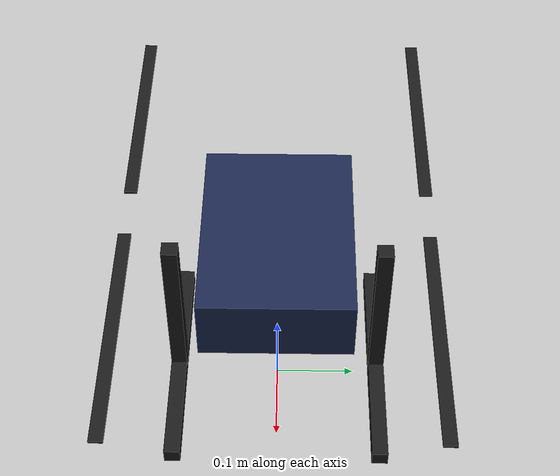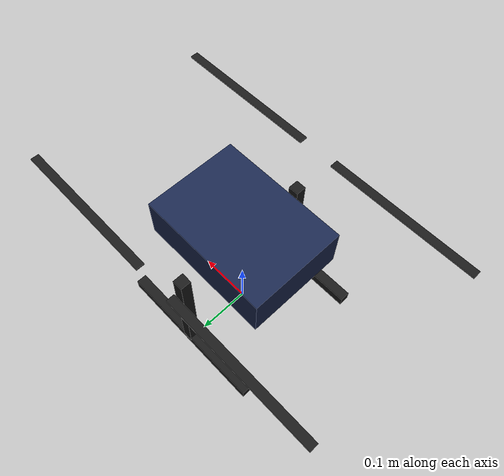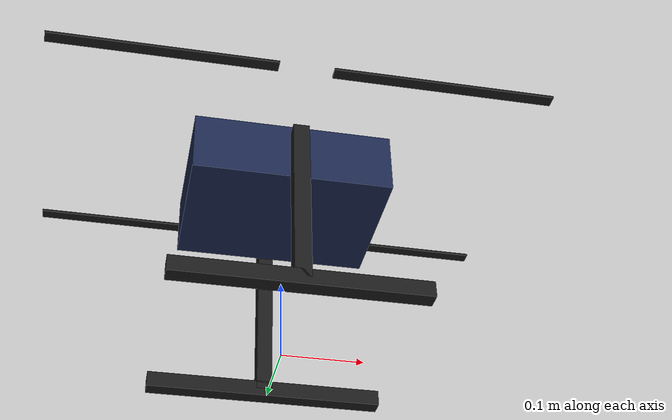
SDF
<?xml version='1.0' encoding='utf-8'?>
<sdf version="1.8">
  <model name="addc_quad">
    <pose>0 0 0.24 0 0 0</pose>
    <self_collide>false</self_collide>
    <link name="base_link">
      <inertial>
        <mass>1.7</mass>
        <inertia>
          <ixx>0.0217</ixx>
          <iyy>0.0217</iyy>
          <izz>0.04</izz>
          <ixy>0</ixy>
          <ixz>0</ixz>
          <iyz>0</iyz>
        </inertia>
      </inertial>
      <visual name="body">
        <pose>0 0 0 0 0 0</pose>
        <geometry>
          <box>
            <size>0.25 0.18 0.08</size>
          </box>
        </geometry>
        <material>
          <ambient>0.1 0.15 0.3 1</ambient>
          <diffuse>0.1 0.15 0.3 1</diffuse>
        </material>
      </visual>
      <collision name="body_collision">
        <pose>0 0 0 0 0 0</pose>
        <geometry>
          <box>
            <size>0.25 0.18 0.08</size>
          </box>
        </geometry>
      </collision>
      <visual name="leg_0">
        <pose>0 -0.13 -0.22 0 0 0</pose>
        <geometry>
          <box>
            <size>0.3 0.02 0.02</size>
          </box>
        </geometry>
        <material>
          <ambient>0.1 0.1 0.1 1</ambient>
          <diffuse>0.1 0.1 0.1 1</diffuse>
        </material>
      </visual>
      <collision name="leg_0_collision">
        <pose>0 -0.13 -0.22 0 0 0</pose>
        <geometry>
          <box>
            <size>0.3 0.02 0.02</size>
          </box>
        </geometry>
      </collision>
      <visual name="strut_0">
        <pose>0 -0.13 -0.11 0 0 0</pose>
        <geometry>
          <box>
            <size>0.02 0.02 0.22</size>
          </box>
        </geometry>
        <material>
          <ambient>0.1 0.1 0.1 1</ambient>
          <diffuse>0.1 0.1 0.1 1</diffuse>
        </material>
      </visual>
      <collision name="strut_0_collision">
        <pose>0 -0.13 -0.11 0 0 0</pose>
        <geometry>
          <box>
            <size>0.02 0.02 0.22</size>
          </box>
        </geometry>
      </collision>
      <visual name="leg_1">
        <pose>0 0.13 -0.22 0 0 0</pose>
        <geometry>
          <box>
            <size>0.3 0.02 0.02</size>
          </box>
        </geometry>
        <material>
          <ambient>0.1 0.1 0.1 1</ambient>
          <diffuse>0.1 0.1 0.1 1</diffuse>
        </material>
      </visual>
      <collision name="leg_1_collision">
        <pose>0 0.13 -0.22 0 0 0</pose>
        <geometry>
          <box>
            <size>0.3 0.02 0.02</size>
          </box>
        </geometry>
      </collision>
      <visual name="strut_1">
        <pose>0 0.13 -0.11 0 0 0</pose>
        <geometry>
          <box>
            <size>0.02 0.02 0.22</size>
          </box>
        </geometry>
        <material>
          <ambient>0.1 0.1 0.1 1</ambient>
          <diffuse>0.1 0.1 0.1 1</diffuse>
        </material>
      </visual>
      <collision name="strut_1_collision">
        <pose>0 0.13 -0.11 0 0 0</pose>
        <geometry>
          <box>
            <size>0.02 0.02 0.22</size>
          </box>
        </geometry>
      </collision>
      <sensor name="imu_sensor" type="imu">
        <always_on>true</always_on>
        <update_rate>250</update_rate>
      </sensor>
      <sensor name="air_pressure_sensor" type="air_pressure">
        <always_on>true</always_on>
        <update_rate>50</update_rate>
        <air_pressure>
          <pressure>
            <noise type="gaussian">
              <mean>0</mean>
              <stddev>0.01</stddev>
            </noise>
          </pressure>
        </air_pressure>
      </sensor>
      <sensor name="discovery_camera" type="camera">
        <pose>0.2 0.0 -0.05 0 0.4363323129985824 0</pose>
        <always_on>true</always_on>
        <update_rate>15.0</update_rate>
        <topic>/camera/discovery/image</topic>
        <camera name="discovery">
          <horizontal_fov>1.0471975511965976</horizontal_fov>
          <optical_frame_id>discovery_camera_optical</optical_frame_id>
          <camera_info_topic>/camera/discovery/camera_info</camera_info_topic>
          <image>
            <width>1920</width>
            <height>1080</height>
            <format>R8G8B8</format>
          </image>
          <clip>
            <near>0.05</near>
            <far>100</far>
          </clip>
        </camera>
      </sensor>
      <sensor name="down_camera" type="camera">
        <pose>0.0 0.0 -0.1 0 1.5707963267948966 0</pose>
        <always_on>true</always_on>
        <update_rate>15.0</update_rate>
        <topic>/camera/down/image</topic>
        <camera name="down">
          <horizontal_fov>1.0471975511965976</horizontal_fov>
          <optical_frame_id>down_camera_optical</optical_frame_id>
          <camera_info_topic>/camera/down/camera_info</camera_info_topic>
          <image>
            <width>1920</width>
            <height>1080</height>
            <format>R8G8B8</format>
          </image>
          <clip>
            <near>0.05</near>
            <far>100</far>
          </clip>
        </camera>
      </sensor>
    </link>
    <link name="rotor_0">
      <pose>0.174 -0.174 0.06 0 0 0</pose>
      <inertial>
        <mass>0.016</mass>
        <inertia>
          <ixx>3.85e-07</ixx>
          <iyy>2.61e-05</iyy>
          <izz>2.64e-05</izz>
        </inertia>
      </inertial>
      <visual name="propeller">
        <pose>0 0 0 0 0 0</pose>
        <geometry>
          <box>
            <size>0.28 0.015 0.003</size>
          </box>
        </geometry>
        <material>
          <ambient>0.1 0.1 0.1 1</ambient>
          <diffuse>0.1 0.1 0.1 1</diffuse>
        </material>
      </visual>
    </link>
    <joint name="rotor_0_joint" type="revolute">
      <parent>base_link</parent>
      <child>rotor_0</child>
      <axis>
        <xyz>0 0 1</xyz>
        <limit>
          <lower>-1e16</lower>
          <upper>1e16</upper>
        </limit>
      </axis>
    </joint>
    <plugin filename="ignition-gazebo-multicopter-motor-model-system" name="ignition::gazebo::systems::MulticopterMotorModel">
      <robotNamespace>addc_quad_0</robotNamespace>
      <jointName>rotor_0_joint</jointName>
      <linkName>rotor_0</linkName>
      <turningDirection>ccw</turningDirection>
      <timeConstantUp>0.0125</timeConstantUp>
      <timeConstantDown>0.025</timeConstantDown>
      <maxRotVelocity>1000</maxRotVelocity>
      <motorConstant>8.54858e-06</motorConstant>
      <momentConstant>0.016</momentConstant>
      <commandSubTopic>command/motor_speed</commandSubTopic>
      <motorNumber>0</motorNumber>
      <rotorDragCoefficient>8.06428e-05</rotorDragCoefficient>
      <rollingMomentCoefficient>1e-06</rollingMomentCoefficient>
      <rotorVelocitySlowdownSim>10</rotorVelocitySlowdownSim>
      <motorType>velocity</motorType>
    </plugin>
    <link name="rotor_1">
      <pose>-0.174 0.174 0.06 0 0 0</pose>
      <inertial>
        <mass>0.016</mass>
        <inertia>
          <ixx>3.85e-07</ixx>
          <iyy>2.61e-05</iyy>
          <izz>2.64e-05</izz>
        </inertia>
      </inertial>
      <visual name="propeller">
        <pose>0 0 0 0 0 0</pose>
        <geometry>
          <box>
            <size>0.28 0.015 0.003</size>
          </box>
        </geometry>
        <material>
          <ambient>0.1 0.1 0.1 1</ambient>
          <diffuse>0.1 0.1 0.1 1</diffuse>
        </material>
      </visual>
    </link>
    <joint name="rotor_1_joint" type="revolute">
      <parent>base_link</parent>
      <child>rotor_1</child>
      <axis>
        <xyz>0 0 1</xyz>
        <limit>
          <lower>-1e16</lower>
          <upper>1e16</upper>
        </limit>
      </axis>
    </joint>
    <plugin filename="ignition-gazebo-multicopter-motor-model-system" name="ignition::gazebo::systems::MulticopterMotorModel">
      <robotNamespace>addc_quad_0</robotNamespace>
      <jointName>rotor_1_joint</jointName>
      <linkName>rotor_1</linkName>
      <turningDirection>ccw</turningDirection>
      <timeConstantUp>0.0125</timeConstantUp>
      <timeConstantDown>0.025</timeConstantDown>
      <maxRotVelocity>1000</maxRotVelocity>
      <motorConstant>8.54858e-06</motorConstant>
      <momentConstant>0.016</momentConstant>
      <commandSubTopic>command/motor_speed</commandSubTopic>
      <motorNumber>1</motorNumber>
      <rotorDragCoefficient>8.06428e-05</rotorDragCoefficient>
      <rollingMomentCoefficient>1e-06</rollingMomentCoefficient>
      <rotorVelocitySlowdownSim>10</rotorVelocitySlowdownSim>
      <motorType>velocity</motorType>
    </plugin>
    <link name="rotor_2">
      <pose>0.174 0.174 0.06 0 0 0</pose>
      <inertial>
        <mass>0.016</mass>
        <inertia>
          <ixx>3.85e-07</ixx>
          <iyy>2.61e-05</iyy>
          <izz>2.64e-05</izz>
        </inertia>
      </inertial>
      <visual name="propeller">
        <pose>0 0 0 0 0 0</pose>
        <geometry>
          <box>
            <size>0.28 0.015 0.003</size>
          </box>
        </geometry>
        <material>
          <ambient>0.1 0.1 0.1 1</ambient>
          <diffuse>0.1 0.1 0.1 1</diffuse>
        </material>
      </visual>
    </link>
    <joint name="rotor_2_joint" type="revolute">
      <parent>base_link</parent>
      <child>rotor_2</child>
      <axis>
        <xyz>0 0 1</xyz>
        <limit>
          <lower>-1e16</lower>
          <upper>1e16</upper>
        </limit>
      </axis>
    </joint>
    <plugin filename="ignition-gazebo-multicopter-motor-model-system" name="ignition::gazebo::systems::MulticopterMotorModel">
      <robotNamespace>addc_quad_0</robotNamespace>
      <jointName>rotor_2_joint</jointName>
      <linkName>rotor_2</linkName>
      <turningDirection>cw</turningDirection>
      <timeConstantUp>0.0125</timeConstantUp>
      <timeConstantDown>0.025</timeConstantDown>
      <maxRotVelocity>1000</maxRotVelocity>
      <motorConstant>8.54858e-06</motorConstant>
      <momentConstant>0.016</momentConstant>
      <commandSubTopic>command/motor_speed</commandSubTopic>
      <motorNumber>2</motorNumber>
      <rotorDragCoefficient>8.06428e-05</rotorDragCoefficient>
      <rollingMomentCoefficient>1e-06</rollingMomentCoefficient>
      <rotorVelocitySlowdownSim>10</rotorVelocitySlowdownSim>
      <motorType>velocity</motorType>
    </plugin>
    <link name="rotor_3">
      <pose>-0.174 -0.174 0.06 0 0 0</pose>
      <inertial>
        <mass>0.016</mass>
        <inertia>
          <ixx>3.85e-07</ixx>
          <iyy>2.61e-05</iyy>
          <izz>2.64e-05</izz>
        </inertia>
      </inertial>
      <visual name="propeller">
        <pose>0 0 0 0 0 0</pose>
        <geometry>
          <box>
            <size>0.28 0.015 0.003</size>
          </box>
        </geometry>
        <material>
          <ambient>0.1 0.1 0.1 1</ambient>
          <diffuse>0.1 0.1 0.1 1</diffuse>
        </material>
      </visual>
    </link>
    <joint name="rotor_3_joint" type="revolute">
      <parent>base_link</parent>
      <child>rotor_3</child>
      <axis>
        <xyz>0 0 1</xyz>
        <limit>
          <lower>-1e16</lower>
          <upper>1e16</upper>
        </limit>
      </axis>
    </joint>
    <plugin filename="ignition-gazebo-multicopter-motor-model-system" name="ignition::gazebo::systems::MulticopterMotorModel">
      <robotNamespace>addc_quad_0</robotNamespace>
      <jointName>rotor_3_joint</jointName>
      <linkName>rotor_3</linkName>
      <turningDirection>cw</turningDirection>
      <timeConstantUp>0.0125</timeConstantUp>
      <timeConstantDown>0.025</timeConstantDown>
      <maxRotVelocity>1000</maxRotVelocity>
      <motorConstant>8.54858e-06</motorConstant>
      <momentConstant>0.016</momentConstant>
      <commandSubTopic>command/motor_speed</commandSubTopic>
      <motorNumber>3</motorNumber>
      <rotorDragCoefficient>8.06428e-05</rotorDragCoefficient>
      <rollingMomentCoefficient>1e-06</rollingMomentCoefficient>
      <rotorVelocitySlowdownSim>10</rotorVelocitySlowdownSim>
      <motorType>velocity</motorType>
    </plugin>
  </model>
</sdf>
